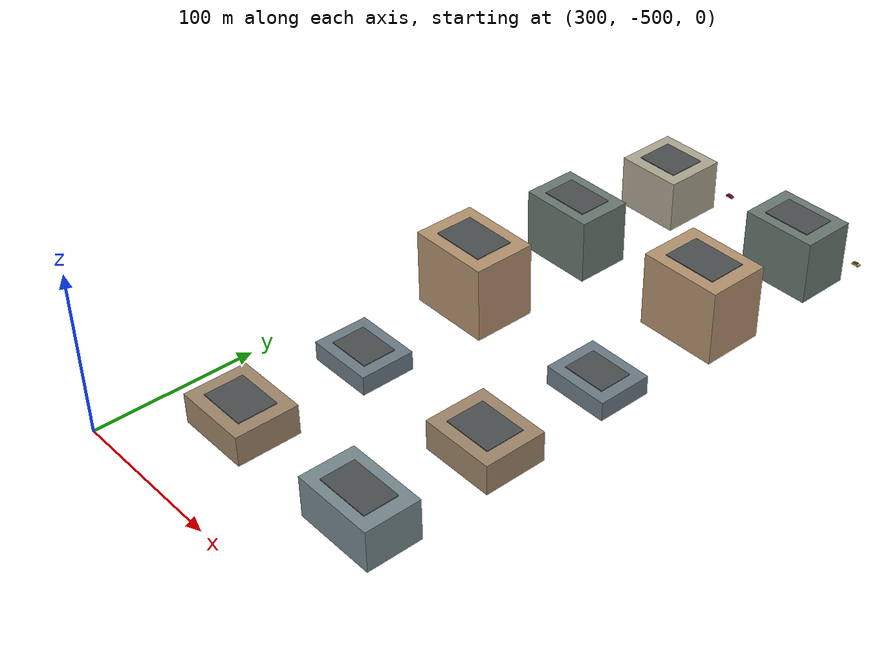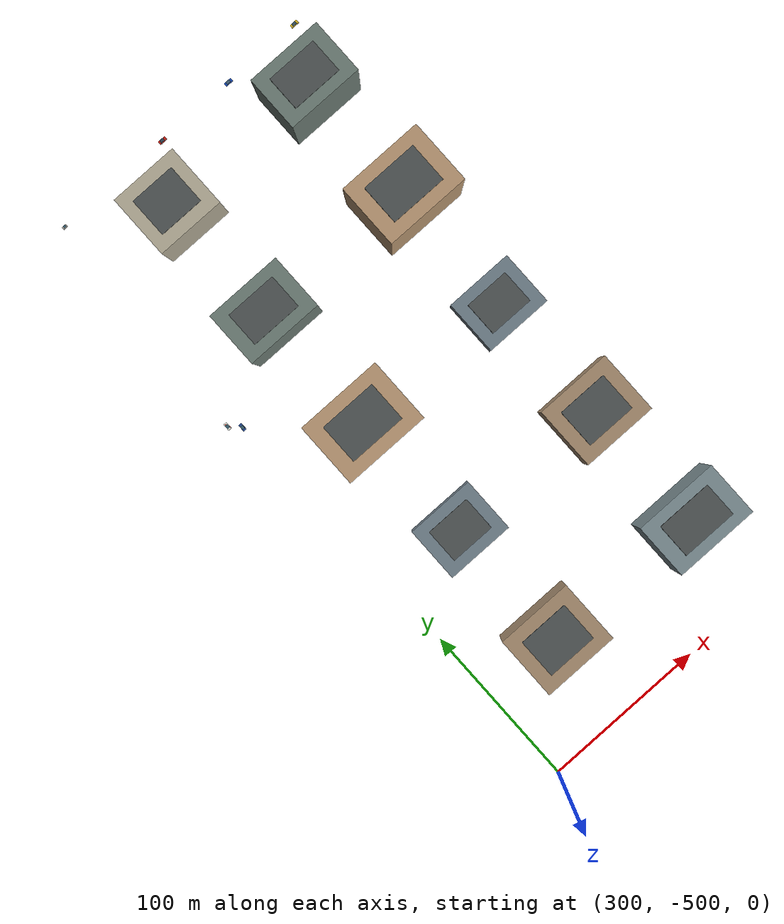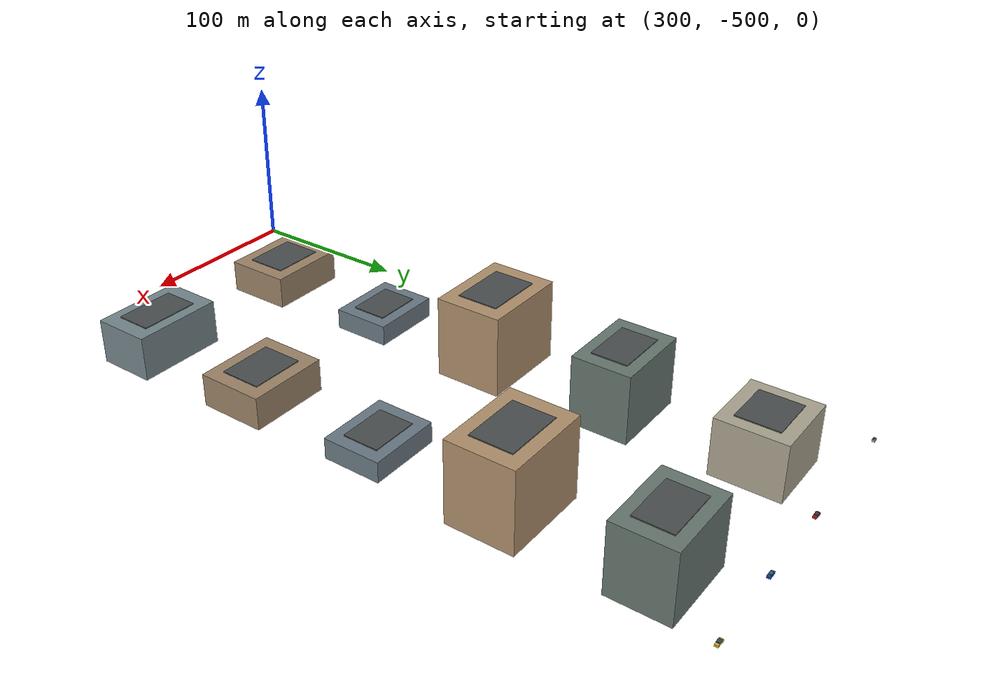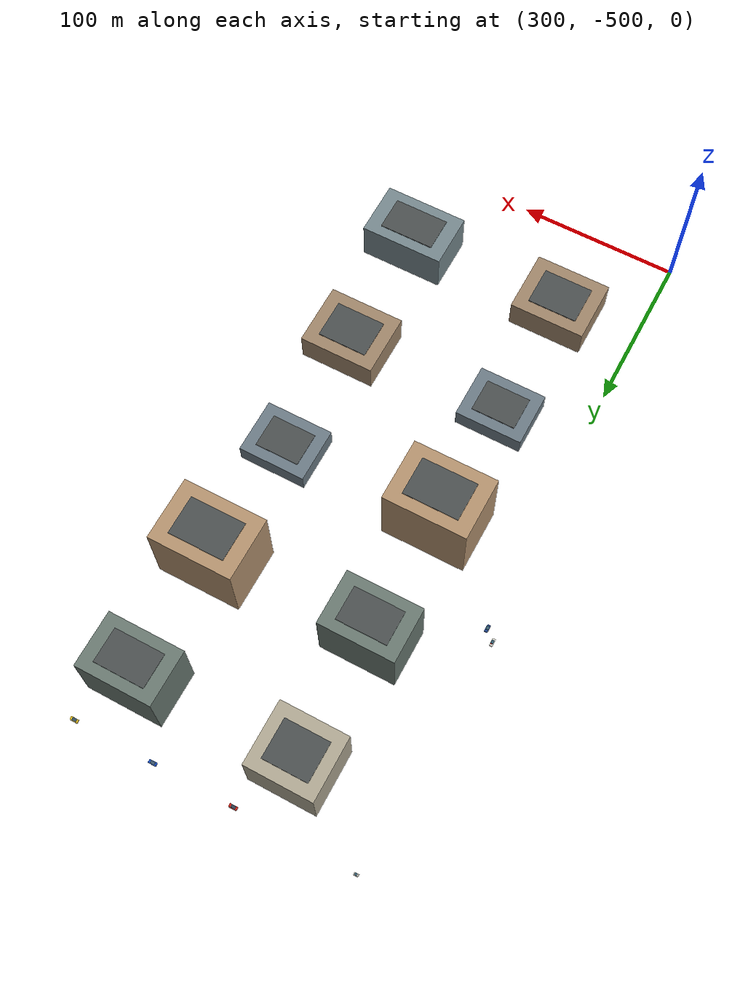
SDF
<sdf version="1.9">
 <world name="smart_city">
  <model name="chennai_block_007">
   <static>true</static>
   <pose>350 -440 0 0 0 0</pose>
   <link name="building">
    <collision name="structure">
     <pose>0 0 9.5 0 0 0</pose>
     <geometry><box><size>47 39 19</size></box></geometry>
    </collision>
    <visual name="facade">
     <pose>0 0 9.5 0 0 0</pose>
     <geometry><box><size>47 39 19</size></box></geometry>
     <material><ambient>0.62 0.52 0.41 1</ambient><diffuse>0.62 0.52 0.41 1</diffuse></material>
    </visual>
    <visual name="roof">
     <pose>0 0 19.3 0 0 0</pose>
     <geometry><box><size>31.0 24.2 0.6</size></box></geometry>
     <material><ambient>0.29 0.31 0.31 1</ambient><diffuse>0.29 0.31 0.31 1</diffuse></material>
    </visual>
   </link>
  </model>
  <model name="chennai_block_008">
   <static>true</static>
   <pose>450 -440 0 0 0 0</pose>
   <link name="building">
    <collision name="structure">
     <pose>0 0 13.0 0 0 0</pose>
     <geometry><box><size>52 34 26</size></box></geometry>
    </collision>
    <visual name="facade">
     <pose>0 0 13.0 0 0 0</pose>
     <geometry><box><size>52 34 26</size></box></geometry>
     <material><ambient>0.46 0.53 0.55 1</ambient><diffuse>0.46 0.53 0.55 1</diffuse></material>
    </visual>
    <visual name="roof">
     <pose>0 0 26.3 0 0 0</pose>
     <geometry><box><size>34.3 21.1 0.6</size></box></geometry>
     <material><ambient>0.29 0.31 0.31 1</ambient><diffuse>0.29 0.31 0.31 1</diffuse></material>
    </visual>
   </link>
  </model>
  <model name="chennai_block_018">
   <static>true</static>
   <pose>350 -360 0 0 0 0</pose>
   <link name="building">
    <collision name="structure">
     <pose>0 0 6.0 0 0 0</pose>
     <geometry><box><size>42 34 12</size></box></geometry>
    </collision>
    <visual name="facade">
     <pose>0 0 6.0 0 0 0</pose>
     <geometry><box><size>42 34 12</size></box></geometry>
     <material><ambient>0.42 0.48 0.52 1</ambient><diffuse>0.42 0.48 0.52 1</diffuse></material>
    </visual>
    <visual name="roof">
     <pose>0 0 12.3 0 0 0</pose>
     <geometry><box><size>27.7 21.1 0.6</size></box></geometry>
     <material><ambient>0.29 0.31 0.31 1</ambient><diffuse>0.29 0.31 0.31 1</diffuse></material>
    </visual>
   </link>
  </model>
  <model name="chennai_block_019">
   <static>true</static>
   <pose>450 -360 0 0 0 0</pose>
   <link name="building">
    <collision name="structure">
     <pose>0 0 9.5 0 0 0</pose>
     <geometry><box><size>47 39 19</size></box></geometry>
    </collision>
    <visual name="facade">
     <pose>0 0 9.5 0 0 0</pose>
     <geometry><box><size>47 39 19</size></box></geometry>
     <material><ambient>0.62 0.52 0.41 1</ambient><diffuse>0.62 0.52 0.41 1</diffuse></material>
    </visual>
    <visual name="roof">
     <pose>0 0 19.3 0 0 0</pose>
     <geometry><box><size>31.0 24.2 0.6</size></box></geometry>
     <material><ambient>0.29 0.31 0.31 1</ambient><diffuse>0.29 0.31 0.31 1</diffuse></material>
    </visual>
   </link>
  </model>
  <model name="chennai_block_029">
   <static>true</static>
   <pose>350 -280 0 0 0 0</pose>
   <link name="building">
    <collision name="structure">
     <pose>0 0 23.5 0 0 0</pose>
     <geometry><box><size>52 39 47</size></box></geometry>
    </collision>
    <visual name="facade">
     <pose>0 0 23.5 0 0 0</pose>
     <geometry><box><size>52 39 47</size></box></geometry>
     <material><ambient>0.70 0.57 0.43 1</ambient><diffuse>0.70 0.57 0.43 1</diffuse></material>
    </visual>
    <visual name="roof">
     <pose>0 0 47.3 0 0 0</pose>
     <geometry><box><size>34.3 24.2 0.6</size></box></geometry>
     <material><ambient>0.29 0.31 0.31 1</ambient><diffuse>0.29 0.31 0.31 1</diffuse></material>
    </visual>
   </link>
  </model>
  <model name="chennai_block_030">
   <static>true</static>
   <pose>450 -280 0 0 0 0</pose>
   <link name="building">
    <collision name="structure">
     <pose>0 0 6.0 0 0 0</pose>
     <geometry><box><size>42 34 12</size></box></geometry>
    </collision>
    <visual name="facade">
     <pose>0 0 6.0 0 0 0</pose>
     <geometry><box><size>42 34 12</size></box></geometry>
     <material><ambient>0.42 0.48 0.52 1</ambient><diffuse>0.42 0.48 0.52 1</diffuse></material>
    </visual>
    <visual name="roof">
     <pose>0 0 12.3 0 0 0</pose>
     <geometry><box><size>27.7 21.1 0.6</size></box></geometry>
     <material><ambient>0.29 0.31 0.31 1</ambient><diffuse>0.29 0.31 0.31 1</diffuse></material>
    </visual>
   </link>
  </model>
  <model name="chennai_block_040">
   <static>true</static>
   <pose>350 -200 0 0 0 0</pose>
   <link name="building">
    <collision name="structure">
     <pose>0 0 20.0 0 0 0</pose>
     <geometry><box><size>47 34 40</size></box></geometry>
    </collision>
    <visual name="facade">
     <pose>0 0 20.0 0 0 0</pose>
     <geometry><box><size>47 34 40</size></box></geometry>
     <material><ambient>0.41 0.47 0.44 1</ambient><diffuse>0.41 0.47 0.44 1</diffuse></material>
    </visual>
    <visual name="roof">
     <pose>0 0 40.3 0 0 0</pose>
     <geometry><box><size>31.0 21.1 0.6</size></box></geometry>
     <material><ambient>0.29 0.31 0.31 1</ambient><diffuse>0.29 0.31 0.31 1</diffuse></material>
    </visual>
   </link>
  </model>
  <model name="chennai_block_041">
   <static>true</static>
   <pose>450 -200 0 0 0 0</pose>
   <link name="building">
    <collision name="structure">
     <pose>0 0 23.5 0 0 0</pose>
     <geometry><box><size>52 39 47</size></box></geometry>
    </collision>
    <visual name="facade">
     <pose>0 0 23.5 0 0 0</pose>
     <geometry><box><size>52 39 47</size></box></geometry>
     <material><ambient>0.70 0.57 0.43 1</ambient><diffuse>0.70 0.57 0.43 1</diffuse></material>
    </visual>
    <visual name="roof">
     <pose>0 0 47.3 0 0 0</pose>
     <geometry><box><size>34.3 24.2 0.6</size></box></geometry>
     <material><ambient>0.29 0.31 0.31 1</ambient><diffuse>0.29 0.31 0.31 1</diffuse></material>
    </visual>
   </link>
  </model>
  <model name="chennai_block_051">
   <static>true</static>
   <pose>350 -120 0 0 0 0</pose>
   <link name="building">
    <collision name="structure">
     <pose>0 0 16.5 0 0 0</pose>
     <geometry><box><size>42 39 33</size></box></geometry>
    </collision>
    <visual name="facade">
     <pose>0 0 16.5 0 0 0</pose>
     <geometry><box><size>42 39 33</size></box></geometry>
     <material><ambient>0.68 0.65 0.57 1</ambient><diffuse>0.68 0.65 0.57 1</diffuse></material>
    </visual>
    <visual name="roof">
     <pose>0 0 33.3 0 0 0</pose>
     <geometry><box><size>27.7 24.2 0.6</size></box></geometry>
     <material><ambient>0.29 0.31 0.31 1</ambient><diffuse>0.29 0.31 0.31 1</diffuse></material>
    </visual>
   </link>
  </model>
  <model name="chennai_block_052">
   <static>true</static>
   <pose>450 -120 0 0 0 0</pose>
   <link name="building">
    <collision name="structure">
     <pose>0 0 20.0 0 0 0</pose>
     <geometry><box><size>47 34 40</size></box></geometry>
    </collision>
    <visual name="facade">
     <pose>0 0 20.0 0 0 0</pose>
     <geometry><box><size>47 34 40</size></box></geometry>
     <material><ambient>0.41 0.47 0.44 1</ambient><diffuse>0.41 0.47 0.44 1</diffuse></material>
    </visual>
    <visual name="roof">
     <pose>0 0 40.3 0 0 0</pose>
     <geometry><box><size>31.0 21.1 0.6</size></box></geometry>
     <material><ambient>0.29 0.31 0.31 1</ambient><diffuse>0.29 0.31 0.31 1</diffuse></material>
    </visual>
   </link>
  </model>
  <model name="chennai_traffic_08">
   <static>false</static>
   <pose>296 -236 0 0 0 1.5708</pose>
   <link name="base_link">
    <pose>0 0 0.72 0 0 0</pose>
    <inertial>
     <mass>650</mass>
     <inertia><ixx>487.5</ixx><iyy>715.0</iyy><izz>910.0</izz><ixy>0</ixy><ixz>0</ixz><iyz>0</iyz></inertia>
    </inertial>
    <collision name="body_collision"><geometry><box><size>4.5 1.95 0.96</size></box></geometry></collision>
    <visual name="body">
     <geometry><box><size>4.5 1.95 0.96</size></box></geometry>
     <material><ambient>0.12 0.27 0.55 1</ambient><diffuse>0.12 0.27 0.55 1</diffuse></material>
    </visual>
    <visual name="cabin">
     <pose>-0.15 0 0.63 0 0 0</pose>
     <geometry><box><size>2.16 1.60 0.63</size></box></geometry>
     <material><ambient>0.20 0.35 0.42 1</ambient><diffuse>0.20 0.35 0.42 1</diffuse></material>
    </visual>
    <collision name="wheel_collision_r_r">
     <pose>-1.40 -0.90 -0.38 1.5708 0 0</pose>
     <geometry><cylinder><radius>0.34</radius><length>0.20</length></cylinder></geometry>
     <surface><friction><ode><mu>0.004</mu><mu2>0.004</mu2></ode></friction></surface>
    </collision>
    <visual name="wheel_r_r">
     <pose>-1.40 -0.90 -0.38 1.5708 0 0</pose>
     <geometry><cylinder><radius>0.34</radius><length>0.20</length></cylinder></geometry>
     <material><ambient>0.055 0.055 0.06 1</ambient><diffuse>0.055 0.055 0.06 1</diffuse></material>
    </visual>
    <collision name="wheel_collision_r_l">
     <pose>-1.40 0.90 -0.38 1.5708 0 0</pose>
     <geometry><cylinder><radius>0.34</radius><length>0.20</length></cylinder></geometry>
     <surface><friction><ode><mu>0.004</mu><mu2>0.004</mu2></ode></friction></surface>
    </collision>
    <visual name="wheel_r_l">
     <pose>-1.40 0.90 -0.38 1.5708 0 0</pose>
     <geometry><cylinder><radius>0.34</radius><length>0.20</length></cylinder></geometry>
     <material><ambient>0.055 0.055 0.06 1</ambient><diffuse>0.055 0.055 0.06 1</diffuse></material>
    </visual>
    <collision name="wheel_collision_f_r">
     <pose>1.40 -0.90 -0.38 1.5708 0 0</pose>
     <geometry><cylinder><radius>0.34</radius><length>0.20</length></cylinder></geometry>
     <surface><friction><ode><mu>0.004</mu><mu2>0.004</mu2></ode></friction></surface>
    </collision>
    <visual name="wheel_f_r">
     <pose>1.40 -0.90 -0.38 1.5708 0 0</pose>
     <geometry><cylinder><radius>0.34</radius><length>0.20</length></cylinder></geometry>
     <material><ambient>0.055 0.055 0.06 1</ambient><diffuse>0.055 0.055 0.06 1</diffuse></material>
    </visual>
    <collision name="wheel_collision_f_l">
     <pose>1.40 0.90 -0.38 1.5708 0 0</pose>
     <geometry><cylinder><radius>0.34</radius><length>0.20</length></cylinder></geometry>
     <surface><friction><ode><mu>0.004</mu><mu2>0.004</mu2></ode></friction></surface>
    </collision>
    <visual name="wheel_f_l">
     <pose>1.40 0.90 -0.38 1.5708 0 0</pose>
     <geometry><cylinder><radius>0.34</radius><length>0.20</length></cylinder></geometry>
     <material><ambient>0.055 0.055 0.06 1</ambient><diffuse>0.055 0.055 0.06 1</diffuse></material>
    </visual>
   </link>
   <plugin filename="gz-sim-trajectory-follower-system" name="gz::sim::systems::TrajectoryFollower">
    <link_name>base_link</link_name>
    <loop>true</loop>
    <range_tolerance>3.0</range_tolerance>
    <bearing_tolerance>8.0</bearing_tolerance>
    <force>90</force>
    <torque>220</torque>
    <waypoints>
     <waypoint>296 -236</waypoint>
     <waypoint>296 -84</waypoint>
     <waypoint>104 -84</waypoint>
     <waypoint>104 -236</waypoint>
    </waypoints>
   </plugin>
  </model>
  <model name="chennai_traffic_09">
   <static>false</static>
   <pose>296 -84 0 0 0 3.1416</pose>
   <link name="base_link">
    <pose>0 0 0.72 0 0 0</pose>
    <inertial>
     <mass>340</mass>
     <inertia><ixx>255.0</ixx><iyy>374.0</iyy><izz>476.0</izz><ixy>0</ixy><ixz>0</ixz><iyz>0</iyz></inertia>
    </inertial>
    <collision name="body_collision"><geometry><box><size>2.7 1.55 1.10</size></box></geometry></collision>
    <visual name="body">
     <geometry><box><size>2.7 1.55 1.10</size></box></geometry>
     <material><ambient>0.72 0.72 0.68 1</ambient><diffuse>0.72 0.72 0.68 1</diffuse></material>
    </visual>
    <visual name="cabin">
     <pose>-0.15 0 0.72 0 0 0</pose>
     <geometry><box><size>1.296 1.27 0.72</size></box></geometry>
     <material><ambient>0.20 0.35 0.42 1</ambient><diffuse>0.20 0.35 0.42 1</diffuse></material>
    </visual>
    <collision name="wheel_collision_r_r">
     <pose>-0.84 -0.71 -0.38 1.5708 0 0</pose>
     <geometry><cylinder><radius>0.34</radius><length>0.20</length></cylinder></geometry>
     <surface><friction><ode><mu>0.004</mu><mu2>0.004</mu2></ode></friction></surface>
    </collision>
    <visual name="wheel_r_r">
     <pose>-0.84 -0.71 -0.38 1.5708 0 0</pose>
     <geometry><cylinder><radius>0.34</radius><length>0.20</length></cylinder></geometry>
     <material><ambient>0.055 0.055 0.06 1</ambient><diffuse>0.055 0.055 0.06 1</diffuse></material>
    </visual>
    <collision name="wheel_collision_r_l">
     <pose>-0.84 0.71 -0.38 1.5708 0 0</pose>
     <geometry><cylinder><radius>0.34</radius><length>0.20</length></cylinder></geometry>
     <surface><friction><ode><mu>0.004</mu><mu2>0.004</mu2></ode></friction></surface>
    </collision>
    <visual name="wheel_r_l">
     <pose>-0.84 0.71 -0.38 1.5708 0 0</pose>
     <geometry><cylinder><radius>0.34</radius><length>0.20</length></cylinder></geometry>
     <material><ambient>0.055 0.055 0.06 1</ambient><diffuse>0.055 0.055 0.06 1</diffuse></material>
    </visual>
    <collision name="wheel_collision_f_r">
     <pose>0.84 -0.71 -0.38 1.5708 0 0</pose>
     <geometry><cylinder><radius>0.34</radius><length>0.20</length></cylinder></geometry>
     <surface><friction><ode><mu>0.004</mu><mu2>0.004</mu2></ode></friction></surface>
    </collision>
    <visual name="wheel_f_r">
     <pose>0.84 -0.71 -0.38 1.5708 0 0</pose>
     <geometry><cylinder><radius>0.34</radius><length>0.20</length></cylinder></geometry>
     <material><ambient>0.055 0.055 0.06 1</ambient><diffuse>0.055 0.055 0.06 1</diffuse></material>
    </visual>
    <collision name="wheel_collision_f_l">
     <pose>0.84 0.71 -0.38 1.5708 0 0</pose>
     <geometry><cylinder><radius>0.34</radius><length>0.20</length></cylinder></geometry>
     <surface><friction><ode><mu>0.004</mu><mu2>0.004</mu2></ode></friction></surface>
    </collision>
    <visual name="wheel_f_l">
     <pose>0.84 0.71 -0.38 1.5708 0 0</pose>
     <geometry><cylinder><radius>0.34</radius><length>0.20</length></cylinder></geometry>
     <material><ambient>0.055 0.055 0.06 1</ambient><diffuse>0.055 0.055 0.06 1</diffuse></material>
    </visual>
   </link>
   <plugin filename="gz-sim-trajectory-follower-system" name="gz::sim::systems::TrajectoryFollower">
    <link_name>base_link</link_name>
    <loop>true</loop>
    <range_tolerance>3.0</range_tolerance>
    <bearing_tolerance>8.0</bearing_tolerance>
    <force>90</force>
    <torque>220</torque>
    <waypoints>
     <waypoint>296 -84</waypoint>
     <waypoint>104 -84</waypoint>
     <waypoint>104 -236</waypoint>
     <waypoint>296 -236</waypoint>
    </waypoints>
   </plugin>
  </model>
  <model name="chennai_ambulance_04">
   <static>false</static>
   <pose>290 -230 0 0 0 1.5708</pose>
   <link name="base_link">
    <pose>0 0 0.72 0 0 0</pose>
    <inertial>
     <mass>650</mass>
     <inertia><ixx>487.5</ixx><iyy>715.0</iyy><izz>910.0</izz><ixy>0</ixy><ixz>0</ixz><iyz>0</iyz></inertia>
    </inertial>
    <collision name="body_collision"><geometry><box><size>4.5 1.95 0.96</size></box></geometry></collision>
    <visual name="body">
     <geometry><box><size>4.5 1.95 0.96</size></box></geometry>
     <material><ambient>0.92 0.92 0.88 1</ambient><diffuse>0.92 0.92 0.88 1</diffuse></material>
    </visual>
    <visual name="cabin">
     <pose>-0.15 0 0.63 0 0 0</pose>
     <geometry><box><size>2.16 1.60 0.63</size></box></geometry>
     <material><ambient>0.20 0.35 0.42 1</ambient><diffuse>0.20 0.35 0.42 1</diffuse></material>
    </visual>
    <visual name="red_emergency_stripe_-1">
     <pose>0 -0.990 -0.06 0 0 0</pose>
     <geometry><box><size>3.42 0.035 0.28</size></box></geometry>
     <material><ambient>0.82 0.025 0.02 1</ambient><diffuse>0.82 0.025 0.02 1</diffuse></material>
    </visual>
    <visual name="red_emergency_stripe_1">
     <pose>0 0.990 -0.06 0 0 0</pose>
     <geometry><box><size>3.42 0.035 0.28</size></box></geometry>
     <material><ambient>0.82 0.025 0.02 1</ambient><diffuse>0.82 0.025 0.02 1</diffuse></material>
    </visual>
    <visual name="blue_lightbar">
     <pose>-0.1 0 0.8 0 0 0</pose>
     <geometry><box><size>0.8 0.3 0.16</size></box></geometry>
     <material>
      <ambient>0.02 0.16 0.95 1</ambient>
      <diffuse>0.02 0.16 0.95 1</diffuse>
      <emissive>0.02 0.08 0.65 1</emissive>
     </material>
    </visual>
    <visual name="roof_cross">
     <pose>1.25 0 0.66 0 0 0</pose>
     <geometry><box><size>0.3 0.92 0.08</size></box></geometry>
     <material><ambient>0.9 0.04 0.02 1</ambient><diffuse>0.9 0.04 0.02 1</diffuse></material>
    </visual>
    <collision name="wheel_collision_r_r">
     <pose>-1.40 -0.90 -0.38 1.5708 0 0</pose>
     <geometry><cylinder><radius>0.34</radius><length>0.20</length></cylinder></geometry>
     <surface><friction><ode><mu>0.004</mu><mu2>0.004</mu2></ode></friction></surface>
    </collision>
    <visual name="wheel_r_r">
     <pose>-1.40 -0.90 -0.38 1.5708 0 0</pose>
     <geometry><cylinder><radius>0.34</radius><length>0.20</length></cylinder></geometry>
     <material><ambient>0.055 0.055 0.06 1</ambient><diffuse>0.055 0.055 0.06 1</diffuse></material>
    </visual>
    <collision name="wheel_collision_r_l">
     <pose>-1.40 0.90 -0.38 1.5708 0 0</pose>
     <geometry><cylinder><radius>0.34</radius><length>0.20</length></cylinder></geometry>
     <surface><friction><ode><mu>0.004</mu><mu2>0.004</mu2></ode></friction></surface>
    </collision>
    <visual name="wheel_r_l">
     <pose>-1.40 0.90 -0.38 1.5708 0 0</pose>
     <geometry><cylinder><radius>0.34</radius><length>0.20</length></cylinder></geometry>
     <material><ambient>0.055 0.055 0.06 1</ambient><diffuse>0.055 0.055 0.06 1</diffuse></material>
    </visual>
    <collision name="wheel_collision_f_r">
     <pose>1.40 -0.90 -0.38 1.5708 0 0</pose>
     <geometry><cylinder><radius>0.34</radius><length>0.20</length></cylinder></geometry>
     <surface><friction><ode><mu>0.004</mu><mu2>0.004</mu2></ode></friction></surface>
    </collision>
    <visual name="wheel_f_r">
     <pose>1.40 -0.90 -0.38 1.5708 0 0</pose>
     <geometry><cylinder><radius>0.34</radius><length>0.20</length></cylinder></geometry>
     <material><ambient>0.055 0.055 0.06 1</ambient><diffuse>0.055 0.055 0.06 1</diffuse></material>
    </visual>
    <collision name="wheel_collision_f_l">
     <pose>1.40 0.90 -0.38 1.5708 0 0</pose>
     <geometry><cylinder><radius>0.34</radius><length>0.20</length></cylinder></geometry>
     <surface><friction><ode><mu>0.004</mu><mu2>0.004</mu2></ode></friction></surface>
    </collision>
    <visual name="wheel_f_l">
     <pose>1.40 0.90 -0.38 1.5708 0 0</pose>
     <geometry><cylinder><radius>0.34</radius><length>0.20</length></cylinder></geometry>
     <material><ambient>0.055 0.055 0.06 1</ambient><diffuse>0.055 0.055 0.06 1</diffuse></material>
    </visual>
   </link>
   <plugin filename="gz-sim-trajectory-follower-system" name="gz::sim::systems::TrajectoryFollower">
    <link_name>base_link</link_name>
    <loop>true</loop>
    <range_tolerance>3.0</range_tolerance>
    <bearing_tolerance>8.0</bearing_tolerance>
    <force>90</force>
    <torque>220</torque>
    <waypoints>
     <waypoint>290 -230</waypoint>
     <waypoint>290 -90</waypoint>
     <waypoint>110 -90</waypoint>
     <waypoint>110 -230</waypoint>
    </waypoints>
   </plugin>
  </model>
  <model name="downtown_car_01">
   <static>true</static>
   <pose>370 -84 0 0 0 0</pose>
   <link name="car">
    <visual name="body">
     <pose>0 0 0.72 0 0 0</pose>
     <geometry><box><size>4.8 2.0 1.1</size></box></geometry>
     <material><ambient>0.78 0.12 0.08 1</ambient><diffuse>0.78 0.12 0.08 1</diffuse></material>
    </visual>
    <visual name="cabin">
     <pose>-0.18 0 1.38 0 0 0</pose>
     <geometry><box><size>2.55 1.72 0.72</size></box></geometry>
     <material><ambient>0.18 0.24 0.30 1</ambient><diffuse>0.18 0.24 0.30 1</diffuse></material>
    </visual>
    <visual name="wheel_fl">
     <pose>1.45 0.96 0.36 1.5708 0 0</pose>
     <geometry><cylinder><radius>0.35</radius><length>0.18</length></cylinder></geometry>
     <material><ambient>0.04 0.04 0.045 1</ambient><diffuse>0.04 0.04 0.045 1</diffuse></material>
    </visual>
    <visual name="wheel_fr">
     <pose>1.45 -0.96 0.36 1.5708 0 0</pose>
     <geometry><cylinder><radius>0.35</radius><length>0.18</length></cylinder></geometry>
     <material><ambient>0.04 0.04 0.045 1</ambient><diffuse>0.04 0.04 0.045 1</diffuse></material>
    </visual>
    <visual name="wheel_rl">
     <pose>-1.45 0.96 0.36 1.5708 0 0</pose>
     <geometry><cylinder><radius>0.35</radius><length>0.18</length></cylinder></geometry>
     <material><ambient>0.04 0.04 0.045 1</ambient><diffuse>0.04 0.04 0.045 1</diffuse></material>
    </visual>
    <visual name="wheel_rr">
     <pose>-1.45 -0.96 0.36 1.5708 0 0</pose>
     <geometry><cylinder><radius>0.35</radius><length>0.18</length></cylinder></geometry>
     <material><ambient>0.04 0.04 0.045 1</ambient><diffuse>0.04 0.04 0.045 1</diffuse></material>
    </visual>
   </link>
  </model>
  <model name="downtown_car_02">
   <static>true</static>
   <pose>420 -84 0 0 0 0</pose>
   <link name="car">
    <visual name="body">
     <pose>0 0 0.72 0 0 0</pose>
     <geometry><box><size>4.8 2.0 1.1</size></box></geometry>
     <material><ambient>0.08 0.28 0.72 1</ambient><diffuse>0.08 0.28 0.72 1</diffuse></material>
    </visual>
    <visual name="cabin">
     <pose>-0.18 0 1.38 0 0 0</pose>
     <geometry><box><size>2.55 1.72 0.72</size></box></geometry>
     <material><ambient>0.23 0.34 0.43 1</ambient><diffuse>0.23 0.34 0.43 1</diffuse></material>
    </visual>
    <visual name="wheel_fl">
     <pose>1.45 0.96 0.36 1.5708 0 0</pose>
     <geometry><cylinder><radius>0.35</radius><length>0.18</length></cylinder></geometry>
     <material><ambient>0.04 0.04 0.045 1</ambient><diffuse>0.04 0.04 0.045 1</diffuse></material>
    </visual>
    <visual name="wheel_fr">
     <pose>1.45 -0.96 0.36 1.5708 0 0</pose>
     <geometry><cylinder><radius>0.35</radius><length>0.18</length></cylinder></geometry>
     <material><ambient>0.04 0.04 0.045 1</ambient><diffuse>0.04 0.04 0.045 1</diffuse></material>
    </visual>
    <visual name="wheel_rl">
     <pose>-1.45 0.96 0.36 1.5708 0 0</pose>
     <geometry><cylinder><radius>0.35</radius><length>0.18</length></cylinder></geometry>
     <material><ambient>0.04 0.04 0.045 1</ambient><diffuse>0.04 0.04 0.045 1</diffuse></material>
    </visual>
    <visual name="wheel_rr">
     <pose>-1.45 -0.96 0.36 1.5708 0 0</pose>
     <geometry><cylinder><radius>0.35</radius><length>0.18</length></cylinder></geometry>
     <material><ambient>0.04 0.04 0.045 1</ambient><diffuse>0.04 0.04 0.045 1</diffuse></material>
    </visual>
   </link>
  </model>
  <model name="downtown_car_03">
   <static>true</static>
   <pose>470 -84 0 0 0 0</pose>
   <link name="car">
    <visual name="body">
     <pose>0 0 0.72 0 0 0</pose>
     <geometry><box><size>4.8 2.0 1.1</size></box></geometry>
     <material><ambient>0.88 0.73 0.12 1</ambient><diffuse>0.88 0.73 0.12 1</diffuse></material>
    </visual>
    <visual name="cabin">
     <pose>-0.18 0 1.38 0 0 0</pose>
     <geometry><box><size>2.55 1.72 0.72</size></box></geometry>
     <material><ambient>0.20 0.30 0.35 1</ambient><diffuse>0.20 0.30 0.35 1</diffuse></material>
    </visual>
    <visual name="wheel_fl">
     <pose>1.45 0.96 0.36 1.5708 0 0</pose>
     <geometry><cylinder><radius>0.35</radius><length>0.18</length></cylinder></geometry>
     <material><ambient>0.04 0.04 0.045 1</ambient><diffuse>0.04 0.04 0.045 1</diffuse></material>
    </visual>
    <visual name="wheel_fr">
     <pose>1.45 -0.96 0.36 1.5708 0 0</pose>
     <geometry><cylinder><radius>0.35</radius><length>0.18</length></cylinder></geometry>
     <material><ambient>0.04 0.04 0.045 1</ambient><diffuse>0.04 0.04 0.045 1</diffuse></material>
    </visual>
    <visual name="wheel_rl">
     <pose>-1.45 0.96 0.36 1.5708 0 0</pose>
     <geometry><cylinder><radius>0.35</radius><length>0.18</length></cylinder></geometry>
     <material><ambient>0.04 0.04 0.045 1</ambient><diffuse>0.04 0.04 0.045 1</diffuse></material>
    </visual>
    <visual name="wheel_rr">
     <pose>-1.45 -0.96 0.36 1.5708 0 0</pose>
     <geometry><cylinder><radius>0.35</radius><length>0.18</length></cylinder></geometry>
     <material><ambient>0.04 0.04 0.045 1</ambient><diffuse>0.04 0.04 0.045 1</diffuse></material>
    </visual>
   </link>
  </model>
 </world>
</sdf>
